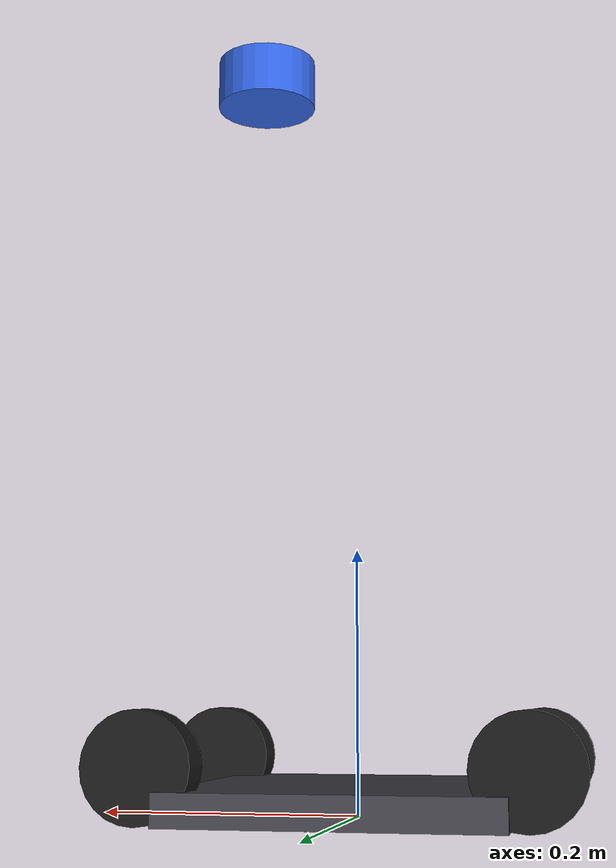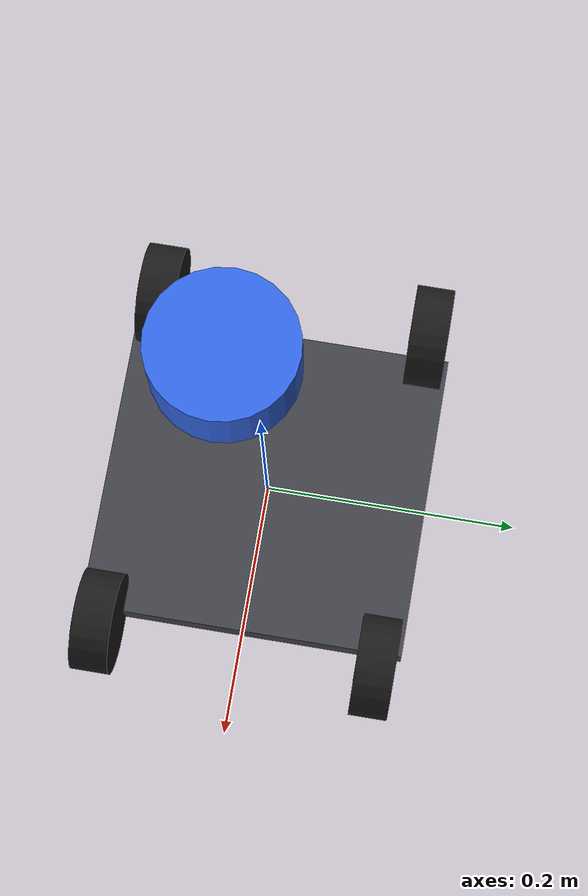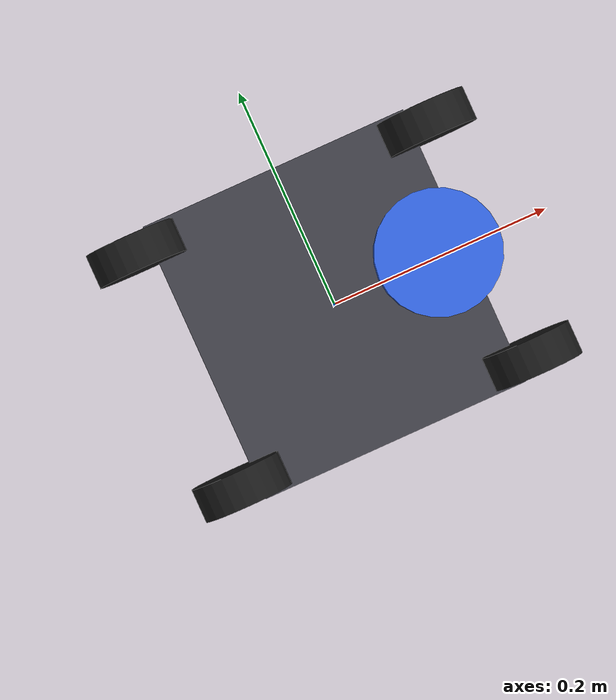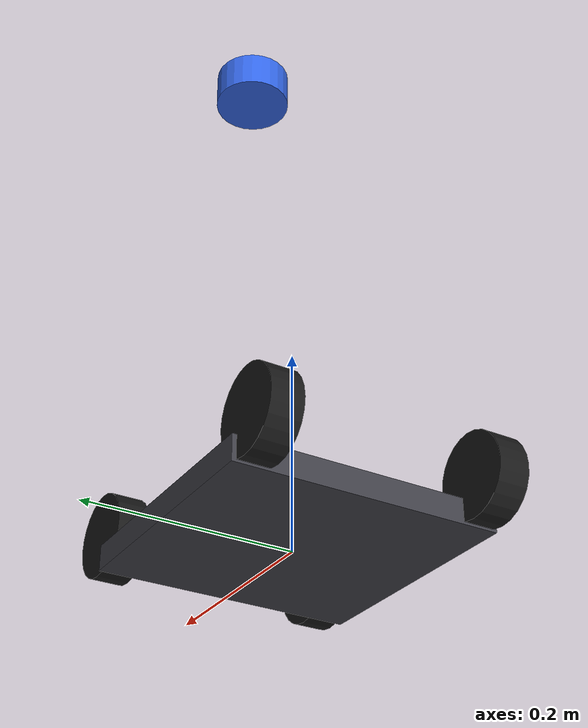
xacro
<?xml version="1.0"?>
<robot xmlns:xacro="http://www.ros.org/wiki/xacro" name="cleanscout">

  <!-- New body outline measured on 2026-07-20. Until an offset is measured,
       navigation treats base_link as the geometric center of this box. -->
  <xacro:property name="base_length" value="0.244" />
  <xacro:property name="base_width" value="0.255" />
  <xacro:property name="base_height" value="0.024" />

  <xacro:property name="wheel_diameter" value="0.08" />
  <xacro:property name="wheel_radius" value="0.04" />
  <xacro:property name="wheel_thickness" value="0.03" />

  <xacro:property name="laser_radius" value="0.04" />
  <xacro:property name="laser_height" value="0.04" />

  <link name="base_link">
    <visual>
      <origin xyz="0 0 ${base_height / 2.0}" rpy="0 0 0" />
      <geometry>
        <box size="${base_length} ${base_width} ${base_height}" />
      </geometry>
      <material name="dark_gray">
        <color rgba="0.25 0.25 0.28 1.0" />
      </material>
    </visual>
    <collision>
      <origin xyz="0 0 ${base_height / 2.0}" rpy="0 0 0" />
      <geometry>
        <box size="${base_length} ${base_width} ${base_height}" />
      </geometry>
    </collision>
  </link>

  <link name="laser">
    <visual>
      <geometry>
        <cylinder radius="${laser_radius}" length="${laser_height}" />
      </geometry>
      <material name="blue">
        <color rgba="0.2 0.4 0.9 1.0" />
      </material>
    </visual>
  </link>

  <joint name="base_link_to_laser_joint" type="fixed">
    <parent link="base_link" />
    <child link="laser" />
    <origin xyz="0.0745 0.0065 0.592" rpy="0 0 0" />
  </joint>

  <xacro:macro name="wheel_link" params="name x y">
    <link name="${name}">
      <visual>
        <origin xyz="0 0 0" rpy="1.57079632679 0 0" />
        <geometry>
          <cylinder radius="${wheel_radius}" length="${wheel_thickness}" />
        </geometry>
        <material name="black">
          <color rgba="0.1 0.1 0.1 1.0" />
        </material>
      </visual>
    </link>
    <joint name="${name}_joint" type="fixed">
      <parent link="base_link" />
      <child link="${name}" />
      <origin xyz="${x} ${y} ${wheel_radius}" rpy="0 0 0" />
    </joint>
  </xacro:macro>

  <xacro:wheel_link name="wheel_lr" x="-0.135" y="0.1085" />
  <xacro:wheel_link name="wheel_lf" x="0.135" y="0.1085" />
  <xacro:wheel_link name="wheel_rr" x="-0.135" y="-0.1085" />
  <xacro:wheel_link name="wheel_rf" x="0.135" y="-0.1085" />

</robot>
